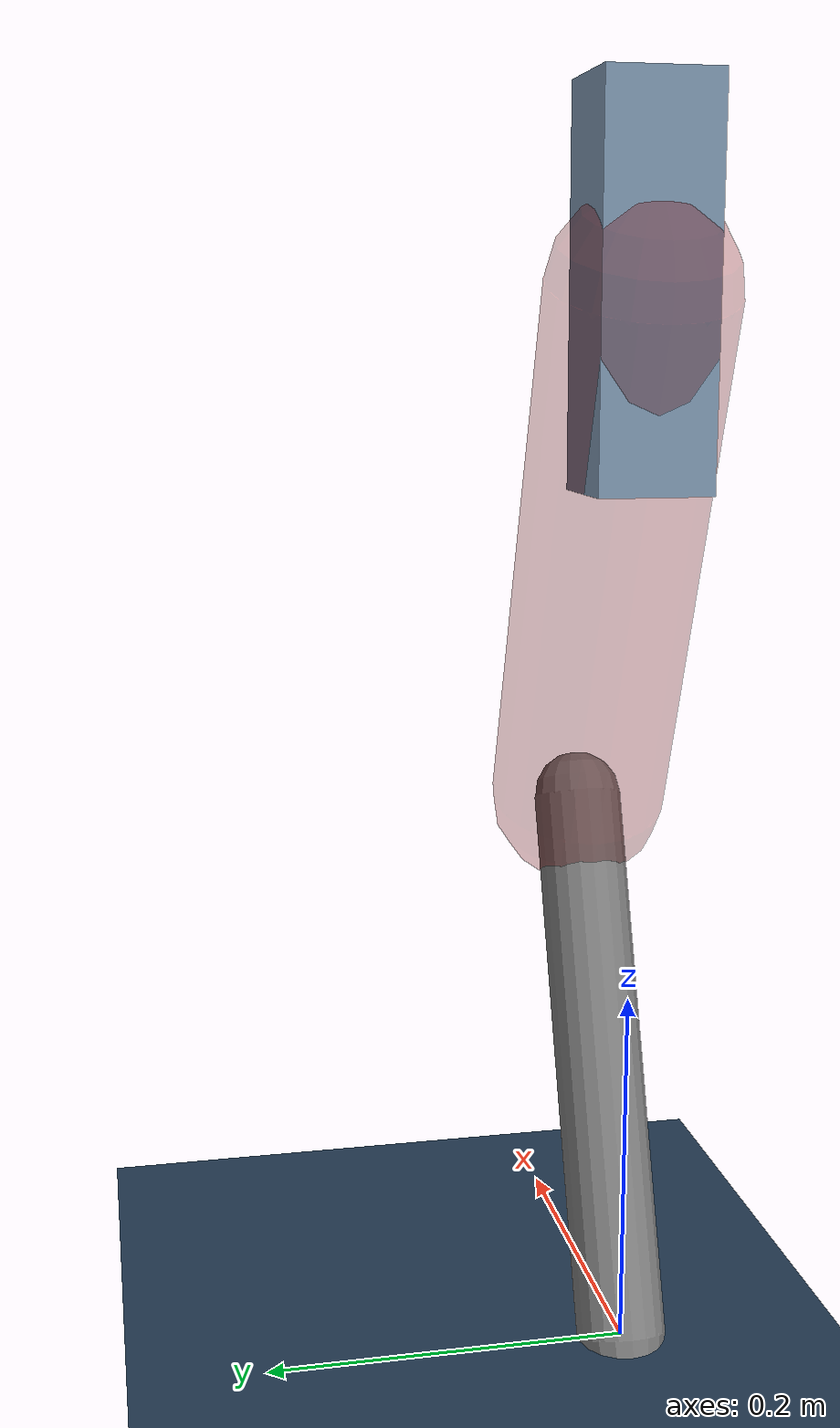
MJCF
<mujoco model="Hopper2D">
	<compiler inertiafromgeom="true" angle="radian" />
	<option timestep="0.001" integrator="implicit" cone="elliptic" solver="Newton" tolerance="1e-10" />

	<default>
		<geom contype="1" conaffinity="1" condim="3" friction="2 0.005 0.0001" solref="0.005 1" />
		<joint limited="true" damping="0.1" />
	</default>

	<asset>
		<texture name="skybox" type="skybox" builtin="gradient" rgb1=".4 .6 .8" rgb2="0 0 0" width="800" height="800" />
		<texture name="grid" type="2d" builtin="checker" rgb1=".1 .2 .3" rgb2=".2 .3 .4" width="300" height="300" mark="edge" markrgb=".2 .3 .4" />
		<material name="ground" texture="grid" texrepeat="1 1" texuniform="true" reflectance="0.1" />
		<material name="leg" rgba="0.5 0.6 0.7 1" />
	</asset>

	<worldbody>

		<geom name="floor" type="plane" size="5 5 0.25" material="ground" />

		<light directional="false" diffuse="0.8 0.8 0.8" specular="0.3 0.3 0.3" pos="0 0 2" dir="0 0 -1" />
		<light mode="targetbodycom" target="base" directional="false" diffuse="0.8 0.8 0.8" specular="0.3 0.3 0.3" pos="0 0 2" dir="0 0 -1" />

		<camera name="fixed" pos="0 -2 1" xyaxes="1 0 0 0 0 1" />
		<camera name="tracking" mode="trackcom" pos="0 -3 1" />

		<body name="root" pos="0 0 0.5712574098601046">
			<joint name="slide_x" type="slide" axis="1 0 0" range="-100 100" />
			<joint name="slide_z" type="slide" axis="0 0 1" range="0 10" />

			<body name="base" pos="0 0 0">
				<geom name="torso" type="box" size="0.03 0.03 0.1" mass="3.3869999999999996" material="leg" />

				<body name="link1" pos="0 0 0" euler="0 1.1986966116051323 0">
					<joint type="hinge" axis="0 -1 0" pos="0 0 0" name="hinge1" limited="true" range="-3.14 3.14" stiffness="0" damping="0.1" />
					<geom name="thigh" type="capsule" fromto="0 0 0 0.3045141400093224 0 0" size="0.05" rgba="0.5 0 0 0.3" mass="1.0009881780251706" />

					<body name="link2" pos="0.3045141400093224 0 0" euler="0 0.7395893950733161 0">
						<joint type="hinge" axis="0 -1 0" pos="0 0 0" name="hinge2" limited="true" range="-3.14 3.14" stiffness="0" damping="0.1" />
						<geom name="shank" type="capsule" fromto="0 0 0 0.30815738780870006 0 0" size="0.025" mass="0.4900259102469601" />

					</body>
				</body>
			</body>
		</body>
	</worldbody>

	<actuator>
		<motor name="torque1" joint="hinge1" ctrlrange="-70.78173989882427 70.78173989882427" ctrllimited="true" gear="1" />
		<motor name="torque2" joint="hinge2" ctrlrange="-141.45009403839 141.45009403839" ctrllimited="true" gear="1" />
	</actuator>
</mujoco>
